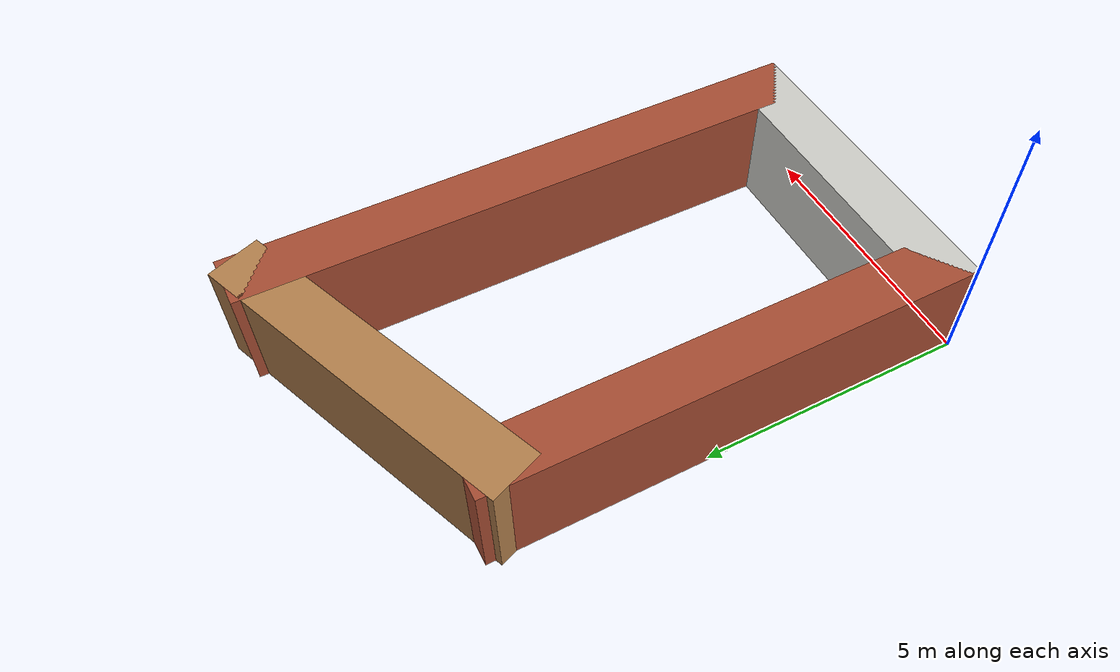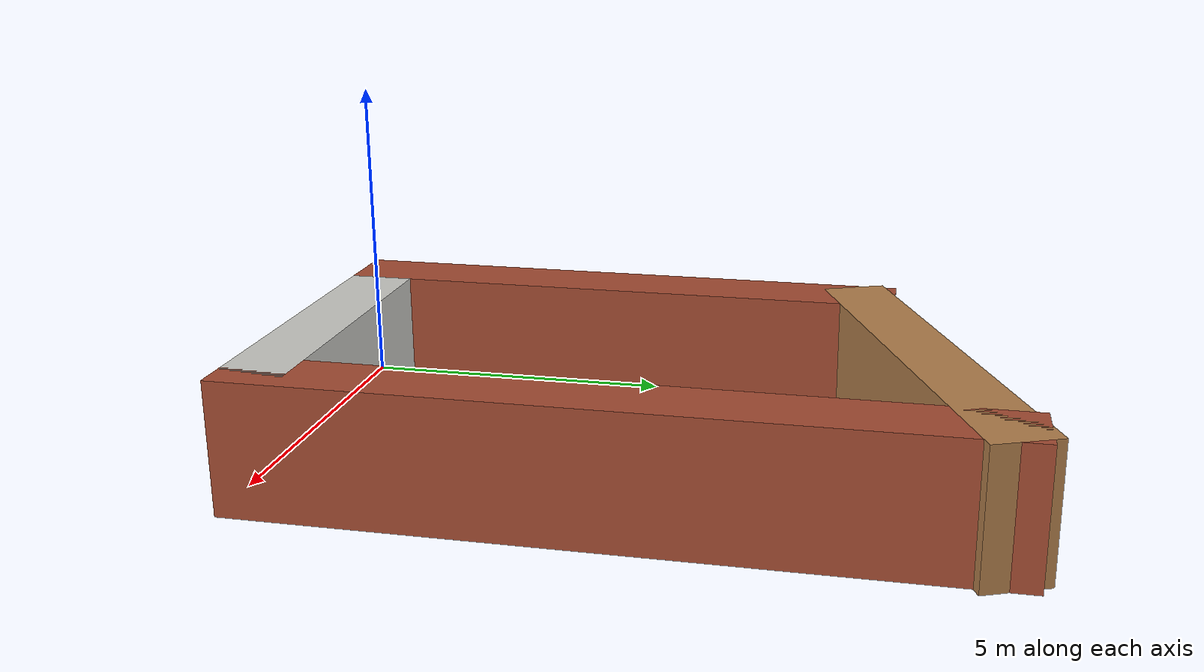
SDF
<?xml version='1.0'?>
<sdf version='1.7'>
  <model name='Demo.world'>
    <pose>3 5.57497 0 0 -0 0</pose>
    <link name='Wall_10'>
      <collision name='Wall_10_Collision'>
        <geometry>
          <box>
            <size>6 1 2</size>
          </box>
        </geometry>
        <pose>0 0 1 0 -0 0</pose>
      </collision>
      <visual name='Wall_10_Visual'>
        <pose>0 0 1 0 -0 0</pose>
        <geometry>
          <box>
            <size>6 1 2</size>
          </box>
        </geometry>
        <material>
          <script>
            <uri>file://media/materials/scripts/gazebo.material</uri>
            <name>Gazebo/CeilingTiled</name>
          </script>
          <ambient>1 1 1 1</ambient>
        </material>
        <meta>
          <layer>0</layer>
        </meta>
      </visual>
      <pose>0 -5.07497 0 0 -0 0</pose>
    </link>
    <link name='Wall_12'>
      <collision name='Wall_12_Collision'>
        <geometry>
          <box>
            <size>11 1 2</size>
          </box>
        </geometry>
        <pose>0 0 1 0 -0 0</pose>
      </collision>
      <visual name='Wall_12_Visual'>
        <pose>0 0 1 0 -0 0</pose>
        <geometry>
          <box>
            <size>11 1 2</size>
          </box>
        </geometry>
        <material>
          <script>
            <uri>file://media/materials/scripts/gazebo.material</uri>
            <name>Gazebo/Bricks</name>
          </script>
          <ambient>1 1 1 1</ambient>
        </material>
        <meta>
          <layer>0</layer>
        </meta>
      </visual>
      <pose>2.5 -0.074967 0 0 -0 1.5708</pose>
    </link>
    <link name='Wall_13'>
      <collision name='Wall_13_Collision'>
        <geometry>
          <box>
            <size>6.38516 1 2</size>
          </box>
        </geometry>
        <pose>0 0 1 0 -0 0</pose>
      </collision>
      <visual name='Wall_13_Visual'>
        <pose>0 0 1 0 -0 0</pose>
        <geometry>
          <box>
            <size>6.38516 1 2</size>
          </box>
        </geometry>
        <material>
          <script>
            <uri>file://media/materials/scripts/gazebo.material</uri>
            <name>Gazebo/Wood</name>
          </script>
          <ambient>1 1 1 1</ambient>
        </material>
        <meta>
          <layer>0</layer>
        </meta>
      </visual>
      <pose>0 3.92503 0 0 -0 -2.76109</pose>
    </link>
    <link name='Wall_8'>
      <collision name='Wall_8_Collision'>
        <geometry>
          <box>
            <size>9 1 2</size>
          </box>
        </geometry>
        <pose>0 0 1 0 -0 0</pose>
      </collision>
      <visual name='Wall_8_Visual'>
        <pose>0 0 1 0 -0 0</pose>
        <geometry>
          <box>
            <size>9 1 2</size>
          </box>
        </geometry>
        <material>
          <script>
            <uri>file://media/materials/scripts/gazebo.material</uri>
            <name>Gazebo/Bricks</name>
          </script>
          <ambient>1 1 1 1</ambient>
        </material>
        <meta>
          <layer>0</layer>
        </meta>
      </visual>
      <pose>-2.53059 -1.07497 0 0 -0 1.5708</pose>
    </link>
    <static>1</static>
  </model>
</sdf>
